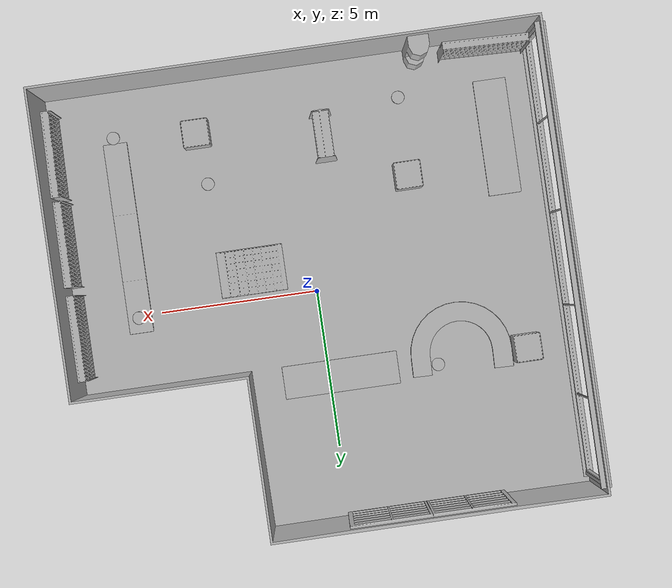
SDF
<sdf version="1.7">
 <world name="default">
  <gravity>0 0 -9.8</gravity>
  <magnetic_field>6e-06 2.3e-05 -4.2e-05</magnetic_field>
  <atmosphere type="adiabatic"/>
  <physics name="default_physics" default="0" type="ode">
   <max_step_size>0.001</max_step_size>
   <real_time_factor>1</real_time_factor>
   <real_time_update_rate>1000</real_time_update_rate>
  </physics>
  <scene>
   <ambient>0.4 0.4 0.4 1</ambient>
   <background>0.7 0.7 0.7 1</background>
   <shadows>1</shadows>
   <grid>0</grid>
   <origin_visual>0</origin_visual>
  </scene>
  <spherical_coordinates>
   <surface_model>EARTH_WGS84</surface_model>
   <latitude_deg>0</latitude_deg>
   <longitude_deg>0</longitude_deg>
   <elevation>0</elevation>
   <heading_deg>0</heading_deg>
  </spherical_coordinates>
  <model name="BookshelfA_01_001">
   <frame name="aws_robomaker_retail_BookshelfA_01::__model__" attached_to="aws_robomaker_retail_BookshelfA_01::link">
    <pose relative_to="__model__">0 0 0 0 -0 0</pose>
   </frame>
   <link name="aws_robomaker_retail_BookshelfA_01::link">
    <inertial>
     <mass>50</mass>
     <inertia><ixx>27.7341</ixx><ixy>0</ixy><ixz>0</ixz><iyy>20.9361</iyy><iyz>0</iyz><izz>11.3596</izz></inertia>
    </inertial>
    <collision name="collision">
     <geometry>
      <mesh>
       <uri>model://aws_robomaker_retail_BookshelfA_01/meshes/aws_BookshelfA_01_collision.DAE</uri>
       <scale>1 1 1</scale>
      </mesh>
     </geometry>
    </collision>
    <visual name="visual">
     <geometry>
      <mesh><uri>model://aws_robomaker_retail_BookshelfA_01/meshes/aws_BookshelfA_01_visual.DAE</uri></mesh>
     </geometry>
     <meta><layer>1</layer></meta>
    </visual>
    <pose relative_to="aws_robomaker_retail_BookshelfA_01::__model__">0 0 0 0 -0 0</pose>
   </link>
   <static>1</static>
   <pose>0.917239 -0.92606 0.040949 1.56994 1.56731 1.57064</pose>
  </model>
  <model name="BookshelfA_01_002">
   <frame name="aws_robomaker_retail_BookshelfA_01::__model__" attached_to="aws_robomaker_retail_BookshelfA_01::link">
    <pose relative_to="__model__">0 0 0 0 -0 0</pose>
   </frame>
   <link name="aws_robomaker_retail_BookshelfA_01::link">
    <inertial>
     <mass>50</mass>
     <inertia><ixx>27.7341</ixx><ixy>0</ixy><ixz>0</ixz><iyy>20.9361</iyy><iyz>0</iyz><izz>11.3596</izz></inertia>
    </inertial>
    <collision name="collision">
     <geometry>
      <mesh>
       <uri>model://aws_robomaker_retail_BookshelfA_01/meshes/aws_BookshelfA_01_collision.DAE</uri>
       <scale>1 1 1</scale>
      </mesh>
     </geometry>
    </collision>
    <visual name="visual">
     <geometry>
      <mesh><uri>model://aws_robomaker_retail_BookshelfA_01/meshes/aws_BookshelfA_01_visual.DAE</uri></mesh>
     </geometry>
     <meta><layer>1</layer></meta>
    </visual>
    <pose relative_to="aws_robomaker_retail_BookshelfA_01::__model__">0 0 0 0 -0 0</pose>
   </link>
   <static>1</static>
   <pose>-0.871936 -4.76165 0.003411 0 -0 0</pose>
  </model>
  <model name="BookshelfB_01_001">
   <frame name="aws_robomaker_retail_BookshelfB_01::__model__" attached_to="aws_robomaker_retail_BookshelfB_01::link">
    <pose relative_to="__model__">0 0 0 0 -0 0</pose>
   </frame>
   <link name="aws_robomaker_retail_BookshelfB_01::link">
    <inertial>
     <mass>50</mass>
     <inertia><ixx>19.8742</ixx><ixy>0</ixy><ixz>0</ixz><iyy>49.1263</iyy><iyz>0</iyz><izz>30.2231</izz></inertia>
    </inertial>
    <collision name="collision">
     <geometry>
      <mesh>
       <uri>model://aws_robomaker_retail_BookshelfB_01/meshes/aws_BookshelfB_01_collision.DAE</uri>
       <scale>1 1 1</scale>
      </mesh>
     </geometry>
    </collision>
    <visual name="visual">
     <geometry>
      <mesh><uri>model://aws_robomaker_retail_BookshelfB_01/meshes/aws_BookshelfB_01_visual.DAE</uri></mesh>
     </geometry>
     <meta><layer>1</layer></meta>
    </visual>
    <pose relative_to="aws_robomaker_retail_BookshelfB_01::__model__">0 0 0 0 -0 0</pose>
   </link>
   <static>1</static>
   <pose>-6.18968 -6.78565 -0.008942 0.003533 0.000121 -0.032073</pose>
  </model>
  <model name="BookshelfB_01_006">
   <frame name="aws_robomaker_retail_BookshelfB_01::__model__" attached_to="aws_robomaker_retail_BookshelfB_01::link">
    <pose relative_to="__model__">0 0 0 0 -0 0</pose>
   </frame>
   <link name="aws_robomaker_retail_BookshelfB_01::link">
    <inertial>
     <mass>50</mass>
     <inertia><ixx>19.8742</ixx><ixy>0</ixy><ixz>0</ixz><iyy>49.1263</iyy><iyz>0</iyz><izz>30.2231</izz></inertia>
    </inertial>
    <collision name="collision">
     <geometry>
      <mesh>
       <uri>model://aws_robomaker_retail_BookshelfB_01/meshes/aws_BookshelfB_01_collision.DAE</uri>
       <scale>1 1 1</scale>
      </mesh>
     </geometry>
    </collision>
    <visual name="visual">
     <geometry>
      <mesh><uri>model://aws_robomaker_retail_BookshelfB_01/meshes/aws_BookshelfB_01_visual.DAE</uri></mesh>
     </geometry>
     <meta><layer>1</layer></meta>
    </visual>
    <pose relative_to="aws_robomaker_retail_BookshelfB_01::__model__">0 0 0 0 -0 0</pose>
   </link>
   <static>1</static>
   <pose>7.47833 -5.2983 0.017443 -0.001974 -0.000211 1.55406</pose>
  </model>
  <model name="BookshelfB_01_007">
   <frame name="aws_robomaker_retail_BookshelfB_01::__model__" attached_to="aws_robomaker_retail_BookshelfB_01::link">
    <pose relative_to="__model__">0 0 0 0 -0 0</pose>
   </frame>
   <link name="aws_robomaker_retail_BookshelfB_01::link">
    <inertial>
     <mass>50</mass>
     <inertia><ixx>19.8742</ixx><ixy>0</ixy><ixz>0</ixz><iyy>49.1263</iyy><iyz>0</iyz><izz>30.2231</izz></inertia>
    </inertial>
    <collision name="collision">
     <geometry>
      <mesh>
       <uri>model://aws_robomaker_retail_BookshelfB_01/meshes/aws_BookshelfB_01_collision.DAE</uri>
       <scale>1 1 1</scale>
      </mesh>
     </geometry>
    </collision>
    <visual name="visual">
     <geometry>
      <mesh><uri>model://aws_robomaker_retail_BookshelfB_01/meshes/aws_BookshelfB_01_visual.DAE</uri></mesh>
     </geometry>
     <meta><layer>1</layer></meta>
    </visual>
    <pose relative_to="aws_robomaker_retail_BookshelfB_01::__model__">0 0 0 0 -0 0</pose>
   </link>
   <static>1</static>
   <pose>7.47833 -2.51065 0.017402 1e-05 -1.3e-05 1.56207</pose>
  </model>
  <model name="BookshelfB_01_008">
   <frame name="aws_robomaker_retail_BookshelfB_01::__model__" attached_to="aws_robomaker_retail_BookshelfB_01::link">
    <pose relative_to="__model__">0 0 0 0 -0 0</pose>
   </frame>
   <link name="aws_robomaker_retail_BookshelfB_01::link">
    <inertial>
     <mass>50</mass>
     <inertia><ixx>19.8742</ixx><ixy>0</ixy><ixz>0</ixz><iyy>49.1263</iyy><iyz>0</iyz><izz>30.2231</izz></inertia>
    </inertial>
    <collision name="collision">
     <geometry>
      <mesh>
       <uri>model://aws_robomaker_retail_BookshelfB_01/meshes/aws_BookshelfB_01_collision.DAE</uri>
       <scale>1 1 1</scale>
      </mesh>
     </geometry>
    </collision>
    <visual name="visual">
     <geometry>
      <mesh><uri>model://aws_robomaker_retail_BookshelfB_01/meshes/aws_BookshelfB_01_visual.DAE</uri></mesh>
     </geometry>
     <meta><layer>1</layer></meta>
    </visual>
    <pose relative_to="aws_robomaker_retail_BookshelfB_01::__model__">0 0 0 0 -0 0</pose>
   </link>
   <static>1</static>
   <pose>7.47833 0.402539 0.017181 3e-06 -0.000156 1.5708</pose>
  </model>
  <model name="BookshelfC_01_001">
   <frame name="aws_robomaker_retail_BookshelfC_01::__model__" attached_to="aws_robomaker_retail_BookshelfC_01::link">
    <pose relative_to="__model__">0 0 0 0 -0 0</pose>
   </frame>
   <link name="aws_robomaker_retail_BookshelfC_01::link">
    <inertial>
     <mass>50</mass>
     <inertia><ixx>5.5865</ixx><ixy>0</ixy><ixz>0</ixz><iyy>5.47324</iyy><iyz>0</iyz><izz>6.23277</izz></inertia>
    </inertial>
    <collision name="collision">
     <geometry>
      <mesh>
       <uri>model://aws_robomaker_retail_BookshelfC_01/meshes/aws_BookshelfC_01_collision.DAE</uri>
       <scale>1 1 1</scale>
      </mesh>
     </geometry>
    </collision>
    <visual name="visual">
     <geometry>
      <mesh><uri>model://aws_robomaker_retail_BookshelfC_01/meshes/aws_BookshelfC_01_visual.DAE</uri></mesh>
     </geometry>
     <meta><layer>1</layer></meta>
    </visual>
    <pose relative_to="aws_robomaker_retail_BookshelfC_01::__model__">0 0 0 0 -0 0</pose>
   </link>
   <static>1</static>
   <pose>-3.35343 -3.21847 0.008469 0.003452 -3e-06 0.00062</pose>
  </model>
  <model name="BookshelfC_01_002">
   <frame name="aws_robomaker_retail_BookshelfC_01::__model__" attached_to="aws_robomaker_retail_BookshelfC_01::link">
    <pose relative_to="__model__">0 0 0 0 -0 0</pose>
   </frame>
   <link name="aws_robomaker_retail_BookshelfC_01::link">
    <inertial>
     <mass>50</mass>
     <inertia><ixx>5.5865</ixx><ixy>0</ixy><ixz>0</ixz><iyy>5.47324</iyy><iyz>0</iyz><izz>6.23277</izz></inertia>
    </inertial>
    <collision name="collision">
     <geometry>
      <mesh>
       <uri>model://aws_robomaker_retail_BookshelfC_01/meshes/aws_BookshelfC_01_collision.DAE</uri>
       <scale>1 1 1</scale>
      </mesh>
     </geometry>
    </collision>
    <visual name="visual">
     <geometry>
      <mesh><uri>model://aws_robomaker_retail_BookshelfC_01/meshes/aws_BookshelfC_01_visual.DAE</uri></mesh>
     </geometry>
     <meta><layer>1</layer></meta>
    </visual>
    <pose relative_to="aws_robomaker_retail_BookshelfC_01::__model__">0 0 0 0 -0 0</pose>
   </link>
   <static>1</static>
   <pose>3.09429 -5.47109 -0.003455 0.003452 -0 1.4e-05</pose>
  </model>
  <model name="ColumnB_01_002">
   <frame name="aws_robomaker_retail_ColumnB_01::__model__" attached_to="aws_robomaker_retail_ColumnB_01::link">
    <pose relative_to="__model__">0 0 0 0 -0 0</pose>
   </frame>
   <link name="aws_robomaker_retail_ColumnB_01::link">
    <inertial>
     <mass>50</mass>
     <inertia><ixx>44.5597</ixx><ixy>0</ixy><ixz>0</ixz><iyy>44.5597</iyy><iyz>0</iyz><izz>1.87942</izz></inertia>
    </inertial>
    <collision name="collision">
     <geometry>
      <mesh>
       <uri>model://aws_robomaker_retail_ColumnB_01/meshes/aws_ColumnB_01_collision.DAE</uri>
       <scale>1 1 1</scale>
      </mesh>
     </geometry>
    </collision>
    <visual name="visual">
     <geometry>
      <mesh><uri>model://aws_robomaker_retail_ColumnB_01/meshes/aws_ColumnB_01_visual.DAE</uri></mesh>
     </geometry>
     <meta><layer>1</layer></meta>
    </visual>
    <pose relative_to="aws_robomaker_retail_ColumnB_01::__model__">0 0 0 0 -0 0</pose>
   </link>
   <static>1</static>
   <pose>-4.07623 -6.86071 0.017511 0.001895 -0.000628 -0.003755</pose>
  </model>
  <model name="InfoDesk_01_001">
   <frame name="aws_robomaker_retail_InfoDesk_01::__model__" attached_to="aws_robomaker_retail_InfoDesk_01::link">
    <pose relative_to="__model__">0 0 0 0 -0 0</pose>
   </frame>
   <link name="aws_robomaker_retail_InfoDesk_01::link">
    <inertial>
     <mass>50</mass>
     <inertia><ixx>47.8386</ixx><ixy>0</ixy><ixz>0</ixz><iyy>25.3705</iyy><iyz>0</iyz><izz>63.5798</izz></inertia>
    </inertial>
    <collision name="collision">
     <geometry>
      <mesh>
       <uri>model://aws_robomaker_retail_InfoDesk_01/meshes/aws_InfoDesk_01_collision.DAE</uri>
       <scale>1 1 1</scale>
      </mesh>
     </geometry>
    </collision>
    <visual name="visual">
     <geometry>
      <mesh><uri>model://aws_robomaker_retail_InfoDesk_01/meshes/aws_InfoDesk_01_visual.DAE</uri></mesh>
     </geometry>
     <meta><layer>1</layer></meta>
    </visual>
    <pose relative_to="aws_robomaker_retail_InfoDesk_01::__model__">0 0 0 0 -0 0</pose>
   </link>
   <static>1</static>
   <pose>-4.19801 2.03917 0.076247 0.00511 0.006739 1.54568</pose>
  </model>
  <model name="DeskB_01_001">
   <frame name="aws_robomaker_retail_DeskB_01::__model__" attached_to="aws_robomaker_retail_DeskB_01::link">
    <pose relative_to="__model__">0 0 0 0 -0 0</pose>
   </frame>
   <link name="aws_robomaker_retail_DeskB_01::link">
    <inertial>
     <mass>50</mass>
     <inertia><ixx>154.884</ixx><ixy>0</ixy><ixz>0</ixz><iyy>7.48424</iyy><iyz>0</iyz><izz>152.099</izz></inertia>
    </inertial>
    <collision name="collision">
     <geometry>
      <mesh>
       <uri>model://aws_robomaker_retail_DeskB_01/meshes/aws_DeskB_01_collision.DAE</uri>
       <scale>1 1 1</scale>
      </mesh>
     </geometry>
    </collision>
    <visual name="visual">
     <geometry>
      <mesh><uri>model://aws_robomaker_retail_DeskB_01/meshes/aws_DeskB_01_visual.DAE</uri></mesh>
     </geometry>
     <meta><layer>1</layer></meta>
    </visual>
    <pose relative_to="aws_robomaker_retail_DeskB_01::__model__">0 0 0 0 -0 0</pose>
   </link>
   <static>1</static>
   <pose>5.62294 -2.47542 -0.181282 0 -0 0</pose>
  </model>
  <model name="DeskA_01_002">
   <frame name="aws_robomaker_retail_DeskA_01::__model__" attached_to="aws_robomaker_retail_DeskA_01::link">
    <pose relative_to="__model__">0 0 0 0 -0 0</pose>
   </frame>
   <link name="aws_robomaker_retail_DeskA_01::link">
    <inertial>
     <mass>20</mass>
     <inertia><ixx>3.49717</ixx><ixy>0</ixy><ixz>0</ixz><iyy>23.5599</iyy><iyz>0</iyz><izz>23.5702</izz></inertia>
    </inertial>
    <collision name="collision">
     <geometry>
      <mesh>
       <uri>model://aws_robomaker_retail_DeskA_01/meshes/aws_DeskA_01_collision.DAE</uri>
       <scale>1 1 1</scale>
      </mesh>
     </geometry>
    </collision>
    <visual name="visual">
     <geometry>
      <mesh><uri>model://aws_robomaker_retail_DeskA_01/meshes/aws_DeskA_01_visual.DAE</uri></mesh>
     </geometry>
     <meta><layer>1</layer></meta>
    </visual>
    <pose relative_to="aws_robomaker_retail_DeskA_01::__model__">0 0 0 0 -0 0</pose>
   </link>
   <static>1</static>
   <pose>-0.36511 2.70891 0.013537 -0.000772 -0.001938 1.7e-05</pose>
  </model>
  <model name="DeskA_01_003">
   <frame name="aws_robomaker_retail_DeskA_01::__model__" attached_to="aws_robomaker_retail_DeskA_01::link">
    <pose relative_to="__model__">0 0 0 0 -0 0</pose>
   </frame>
   <link name="aws_robomaker_retail_DeskA_01::link">
    <inertial>
     <mass>20</mass>
     <inertia><ixx>3.49717</ixx><ixy>0</ixy><ixz>0</ixz><iyy>23.5599</iyy><iyz>0</iyz><izz>23.5702</izz></inertia>
    </inertial>
    <collision name="collision">
     <geometry>
      <mesh>
       <uri>model://aws_robomaker_retail_DeskA_01/meshes/aws_DeskA_01_collision.DAE</uri>
       <scale>1 1 1</scale>
      </mesh>
     </geometry>
    </collision>
    <visual name="visual">
     <geometry>
      <mesh><uri>model://aws_robomaker_retail_DeskA_01/meshes/aws_DeskA_01_visual.DAE</uri></mesh>
     </geometry>
     <meta><layer>1</layer></meta>
    </visual>
    <pose relative_to="aws_robomaker_retail_DeskA_01::__model__">0 0 0 0 -0 0</pose>
   </link>
   <static>1</static>
   <pose>-6.25465 -3.9792 -0.004603 0.001948 0.001361 -1.56957</pose>
  </model>
  <model name="DoorB_01_001">
   <frame name="aws_robomaker_retail_DoorB_01::__model__" attached_to="aws_robomaker_retail_DoorB_01::link">
    <pose relative_to="__model__">0 0 0 0 -0 0</pose>
   </frame>
   <link name="aws_robomaker_retail_DoorB_01::link">
    <inertial>
     <mass>50</mass>
     <inertia><ixx>44.5597</ixx><ixy>0</ixy><ixz>0</ixz><iyy>151.699</iyy><iyz>0</iyz><izz>107.806</izz></inertia>
    </inertial>
    <collision name="collision">
     <geometry>
      <mesh>
       <uri>model://aws_robomaker_retail_DoorB_01/meshes/aws_DoorB_01_collision.DAE</uri>
       <scale>1 1 1</scale>
      </mesh>
     </geometry>
    </collision>
    <visual name="visual">
     <geometry>
      <mesh><uri>model://aws_robomaker_retail_DoorB_01/meshes/aws_DoorB_01_visual.DAE</uri></mesh>
     </geometry>
     <meta><layer>2</layer></meta>
    </visual>
    <pose relative_to="aws_robomaker_retail_DoorB_01::__model__">0 0 0 0 -0 0</pose>
   </link>
   <static>1</static>
   <pose>-2.49246 7.21937 -0.035203 0 -0 0</pose>
  </model>
  <model name="RetailShopFloor_01_001">
   <frame name="aws_robomaker_retail_RetailShopFloor_01::__model__" attached_to="aws_robomaker_retail_RetailShopFloor_01::link">
    <pose relative_to="__model__">0 0 0 0 -0 0</pose>
   </frame>
   <link name="aws_robomaker_retail_RetailShopFloor_01::link">
    <inertial><mass>100</mass></inertial>
    <collision name="collision">
     <geometry>
      <mesh>
       <uri>model://aws_robomaker_retail_RetailShopFloor_01/meshes/aws_RetailShopFloor_01_collision.DAE</uri>
       <scale>1 1 1</scale>
      </mesh>
     </geometry>
    </collision>
    <visual name="visual">
     <geometry>
      <mesh>
       <uri>model://aws_robomaker_retail_RetailShopFloor_01/meshes/aws_RetailShopFloor_01_visual.DAE</uri>
      </mesh>
     </geometry>
     <meta><layer>1</layer></meta>
    </visual>
    <pose relative_to="aws_robomaker_retail_RetailShopFloor_01::__model__">0 0 0 0 -0 0</pose>
   </link>
   <static>1</static>
   <pose>-0.002687 0 -0.276618 0 -0 0</pose>
  </model>
  <model name="RetailShopWall_01_001">
   <frame name="aws_robomaker_retail_RetailShopWall_01::__model__" attached_to="aws_robomaker_retail_RetailShopWall_01::link">
    <pose relative_to="__model__">0 0 0 0 -0 0</pose>
   </frame>
   <link name="aws_robomaker_retail_RetailShopWall_01::link">
    <inertial><mass>1</mass></inertial>
    <collision name="collision">
     <geometry>
      <mesh>
       <uri>model://aws_robomaker_retail_RetailShopWall_01/meshes/aws_RetailShopWall_01_collision.DAE</uri>
       <scale>1 1 1</scale>
      </mesh>
     </geometry>
    </collision>
    <visual name="visual">
     <geometry>
      <mesh><uri>model://aws_robomaker_retail_RetailShopWall_01/meshes/aws_RetailShopWall_01_visual.DAE</uri></mesh>
     </geometry>
     <meta><layer>2</layer></meta>
    </visual>
    <pose relative_to="aws_robomaker_retail_RetailShopWall_01::__model__">0 0 0 0 -0 0</pose>
   </link>
   <static>1</static>
   <pose>0 0 -0.281282 0 -0 0</pose>
  </model>
  <model name="LightA_01_001">
   <frame name="aws_robomaker_retail_LightA_01::__model__" attached_to="aws_robomaker_retail_LightA_01::link">
    <pose relative_to="__model__">0 0 0 0 -0 0</pose>
   </frame>
   <link name="aws_robomaker_retail_LightA_01::link">
    <inertial><mass>1</mass></inertial>
    <collision name="collision">
     <geometry>
      <mesh>
       <uri>model://aws_robomaker_retail_LightA_01/meshes/aws_LightA_01_collision.DAE</uri>
       <scale>1 1 1</scale>
      </mesh>
     </geometry>
    </collision>
    <visual name="visual">
     <geometry>
      <mesh><uri>model://aws_robomaker_retail_LightA_01/meshes/aws_LightA_01_visual.DAE</uri></mesh>
     </geometry>
     <meta><layer>3</layer></meta>
    </visual>
    <pose relative_to="aws_robomaker_retail_LightA_01::__model__">0 0 0 0 -0 0</pose>
   </link>
   <static>1</static>
   <pose>2.77442 -3.62815 3.15033 0 -0 0</pose>
  </model>
  <model name="LightA_01_002">
   <frame name="aws_robomaker_retail_LightA_01::__model__" attached_to="aws_robomaker_retail_LightA_01::link">
    <pose relative_to="__model__">0 0 0 0 -0 0</pose>
   </frame>
   <link name="aws_robomaker_retail_LightA_01::link">
    <inertial><mass>1</mass></inertial>
    <collision name="collision">
     <geometry>
      <mesh>
       <uri>model://aws_robomaker_retail_LightA_01/meshes/aws_LightA_01_collision.DAE</uri>
       <scale>1 1 1</scale>
      </mesh>
     </geometry>
    </collision>
    <visual name="visual">
     <geometry>
      <mesh><uri>model://aws_robomaker_retail_LightA_01/meshes/aws_LightA_01_visual.DAE</uri></mesh>
     </geometry>
     <meta><layer>3</layer></meta>
    </visual>
    <pose relative_to="aws_robomaker_retail_LightA_01::__model__">0 0 0 0 -0 0</pose>
   </link>
   <static>1</static>
   <pose>5.38399 -5.38371 3.15033 0 -0 0</pose>
  </model>
  <model name="LightA_01_003">
   <frame name="aws_robomaker_retail_LightA_01::__model__" attached_to="aws_robomaker_retail_LightA_01::link">
    <pose relative_to="__model__">0 0 0 0 -0 0</pose>
   </frame>
   <link name="aws_robomaker_retail_LightA_01::link">
    <inertial><mass>1</mass></inertial>
    <collision name="collision">
     <geometry>
      <mesh>
       <uri>model://aws_robomaker_retail_LightA_01/meshes/aws_LightA_01_collision.DAE</uri>
       <scale>1 1 1</scale>
      </mesh>
     </geometry>
    </collision>
    <visual name="visual">
     <geometry>
      <mesh><uri>model://aws_robomaker_retail_LightA_01/meshes/aws_LightA_01_visual.DAE</uri></mesh>
     </geometry>
     <meta><layer>3</layer></meta>
    </visual>
    <pose relative_to="aws_robomaker_retail_LightA_01::__model__">0 0 0 0 -0 0</pose>
   </link>
   <static>1</static>
   <pose>5.38399 0.04192 3.15033 0 -0 0</pose>
  </model>
  <model name="LightA_01_004">
   <frame name="aws_robomaker_retail_LightA_01::__model__" attached_to="aws_robomaker_retail_LightA_01::link">
    <pose relative_to="__model__">0 0 0 0 -0 0</pose>
   </frame>
   <link name="aws_robomaker_retail_LightA_01::link">
    <inertial><mass>1</mass></inertial>
    <collision name="collision">
     <geometry>
      <mesh>
       <uri>model://aws_robomaker_retail_LightA_01/meshes/aws_LightA_01_collision.DAE</uri>
       <scale>1 1 1</scale>
      </mesh>
     </geometry>
    </collision>
    <visual name="visual">
     <geometry>
      <mesh><uri>model://aws_robomaker_retail_LightA_01/meshes/aws_LightA_01_visual.DAE</uri></mesh>
     </geometry>
     <meta><layer>3</layer></meta>
    </visual>
    <pose relative_to="aws_robomaker_retail_LightA_01::__model__">0 0 0 0 -0 0</pose>
   </link>
   <static>1</static>
   <pose>-3.21067 -5.38371 3.15033 0 -0 0</pose>
  </model>
  <model name="LightA_01_005">
   <frame name="aws_robomaker_retail_LightA_01::__model__" attached_to="aws_robomaker_retail_LightA_01::link">
    <pose relative_to="__model__">0 0 0 0 -0 0</pose>
   </frame>
   <link name="aws_robomaker_retail_LightA_01::link">
    <inertial><mass>1</mass></inertial>
    <collision name="collision">
     <geometry>
      <mesh>
       <uri>model://aws_robomaker_retail_LightA_01/meshes/aws_LightA_01_collision.DAE</uri>
       <scale>1 1 1</scale>
      </mesh>
     </geometry>
    </collision>
    <visual name="visual">
     <geometry>
      <mesh><uri>model://aws_robomaker_retail_LightA_01/meshes/aws_LightA_01_visual.DAE</uri></mesh>
     </geometry>
     <meta><layer>3</layer></meta>
    </visual>
    <pose relative_to="aws_robomaker_retail_LightA_01::__model__">0 0 0 0 -0 0</pose>
   </link>
   <static>1</static>
   <pose>-3.271 2.68593 3.15033 0 -0 0</pose>
  </model>
  <model name="ShopWindow_01_001">
   <frame name="aws_robomaker_retail_ShopWindow_01::__model__" attached_to="aws_robomaker_retail_ShopWindow_01::link">
    <pose relative_to="__model__">0 0 0 0 -0 0</pose>
   </frame>
   <link name="aws_robomaker_retail_ShopWindow_01::link">
    <inertial><mass>1</mass></inertial>
    <collision name="collision">
     <geometry>
      <mesh>
       <uri>model://aws_robomaker_retail_ShopWindow_01/meshes/aws_ShopWindow_01_collision.DAE</uri>
       <scale>1 1 1</scale>
      </mesh>
     </geometry>
    </collision>
    <visual name="visual">
     <geometry>
      <mesh><uri>model://aws_robomaker_retail_ShopWindow_01/meshes/aws_ShopWindow_01_visual.DAE</uri></mesh>
     </geometry>
    </visual>
    <pose relative_to="aws_robomaker_retail_ShopWindow_01::__model__">0 0 0 0 -0 0</pose>
   </link>
   <static>1</static>
   <pose>-7.73816 0.01596 -0.180092 0 -0 0</pose>
  </model>
  <light name="RetailShop_CeilingLight_001" type="point">
   <pose>2.77442 -3.62815 3.17847 0 -0 0</pose>
   <diffuse>0.5 0.5 0.5 1</diffuse>
   <specular>0.1 0.1 0.1 1</specular>
   <attenuation>
    <range>20</range>
    <constant>0.32</constant>
    <linear>0.01</linear>
    <quadratic>0.03</quadratic>
   </attenuation>
   <cast_shadows>0</cast_shadows>
   <direction>0 0 -1</direction>
   <spot><inner_angle>0</inner_angle><outer_angle>0</outer_angle><falloff>0</falloff></spot>
  </light>
  <light name="RetailShop_CeilingLight_002" type="point">
   <pose>5.38399 -5.38371 3.17847 0 -0 0</pose>
   <diffuse>0.5 0.5 0.5 1</diffuse>
   <specular>0.1 0.1 0.1 1</specular>
   <attenuation>
    <range>20</range>
    <constant>0.32</constant>
    <linear>0.01</linear>
    <quadratic>0.03</quadratic>
   </attenuation>
   <cast_shadows>0</cast_shadows>
   <direction>0 0 -1</direction>
   <spot><inner_angle>0</inner_angle><outer_angle>0</outer_angle><falloff>0</falloff></spot>
  </light>
  <light name="RetailShop_CeilingLight_003" type="point">
   <pose>5.38399 0.04192 3.17847 0 -0 0</pose>
   <diffuse>0.5 0.5 0.5 1</diffuse>
   <specular>0.1 0.1 0.1 1</specular>
   <attenuation>
    <range>20</range>
    <constant>0.32</constant>
    <linear>0.01</linear>
    <quadratic>0.03</quadratic>
   </attenuation>
   <cast_shadows>0</cast_shadows>
   <direction>0 0 -1</direction>
   <spot><inner_angle>0</inner_angle><outer_angle>0</outer_angle><falloff>0</falloff></spot>
  </light>
  <light name="RetailShop_CeilingLight_004" type="point">
   <pose>-3.21067 -5.38371 3.17847 0 -0 0</pose>
   <diffuse>0.5 0.5 0.5 1</diffuse>
   <specular>0.1 0.1 0.1 1</specular>
   <attenuation>
    <range>20</range>
    <constant>0.32</constant>
    <linear>0.01</linear>
    <quadratic>0.03</quadratic>
   </attenuation>
   <cast_shadows>0</cast_shadows>
   <direction>0 0 -1</direction>
   <spot><inner_angle>0</inner_angle><outer_angle>0</outer_angle><falloff>0</falloff></spot>
  </light>
  <light name="RetailShop_CeilingLight_005" type="point">
   <pose>-3.271 2.68593 3.17847 0 -0 0</pose>
   <diffuse>0.5 0.5 0.5 1</diffuse>
   <specular>0.1 0.1 0.1 1</specular>
   <attenuation>
    <range>20</range>
    <constant>0.32</constant>
    <linear>0.01</linear>
    <quadratic>0.03</quadratic>
   </attenuation>
   <cast_shadows>0</cast_shadows>
   <direction>0 0 -1</direction>
   <spot><inner_angle>0</inner_angle><outer_angle>0</outer_angle><falloff>0</falloff></spot>
  </light>
  <light name="RetailShop_CeilingLight_006" type="point">
   <pose>1.4932 4.69237 3.17847 0 -0 0</pose>
   <diffuse>0.5 0.5 0.5 1</diffuse>
   <specular>0.1 0.1 0.1 1</specular>
   <attenuation>
    <range>20</range>
    <constant>0.32</constant>
    <linear>0.01</linear>
    <quadratic>0.03</quadratic>
   </attenuation>
   <cast_shadows>0</cast_shadows>
   <direction>0 0 -1</direction>
   <spot><inner_angle>0</inner_angle><outer_angle>0</outer_angle><falloff>0</falloff></spot>
  </light>
  <model name="BookshelfC_01_001_clone">
   <frame name="aws_robomaker_retail_BookshelfC_01::__model__" attached_to="aws_robomaker_retail_BookshelfC_01::link">
    <pose relative_to="__model__">0 0 0 0 -0 0</pose>
   </frame>
   <link name="aws_robomaker_retail_BookshelfC_01::link">
    <inertial>
     <mass>50</mass>
     <inertia><ixx>5.5865</ixx><ixy>0</ixy><ixz>0</ixz><iyy>5.47324</iyy><iyz>0</iyz><izz>6.23277</izz></inertia>
    </inertial>
    <collision name="collision">
     <geometry>
      <mesh>
       <uri>model://aws_robomaker_retail_BookshelfC_01/meshes/aws_BookshelfC_01_collision.DAE</uri>
       <scale>1 1 1</scale>
      </mesh>
     </geometry>
    </collision>
    <visual name="visual">
     <geometry>
      <mesh><uri>model://aws_robomaker_retail_BookshelfC_01/meshes/aws_BookshelfC_01_visual.DAE</uri></mesh>
     </geometry>
     <meta><layer>1</layer></meta>
    </visual>
    <pose relative_to="aws_robomaker_retail_BookshelfC_01::__model__">0 0 0 0 -0 0</pose>
   </link>
   <static>1</static>
   <pose>-6.31823 2.70799 0.006631 0.003452 -3e-06 0.00062</pose>
  </model>
 </world>
</sdf>
